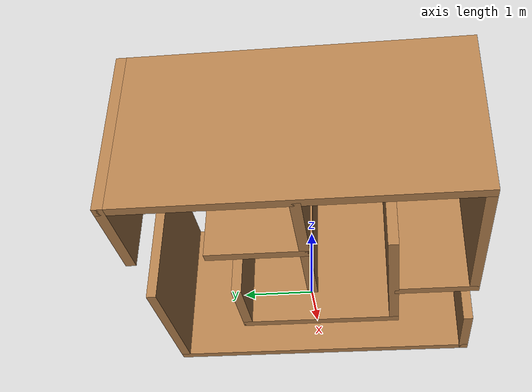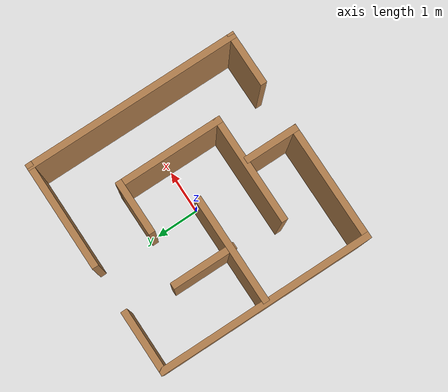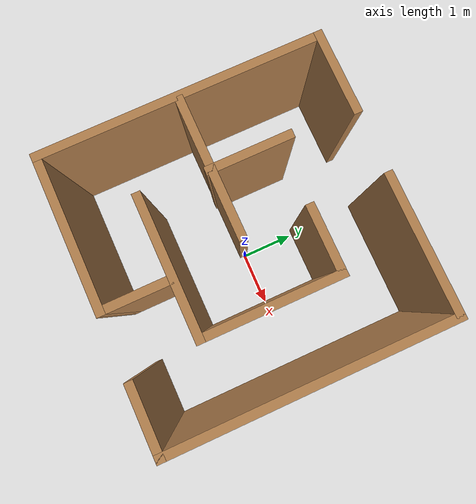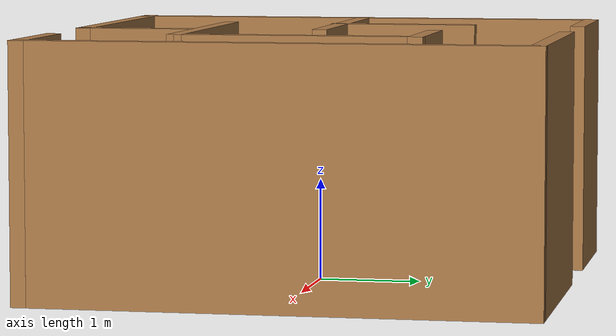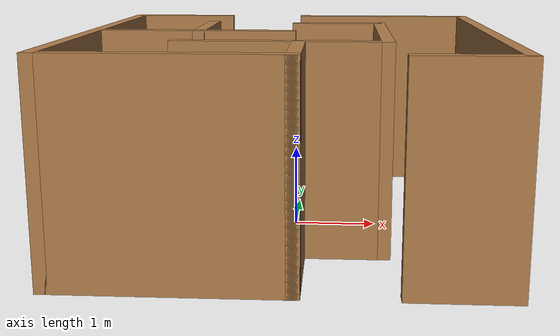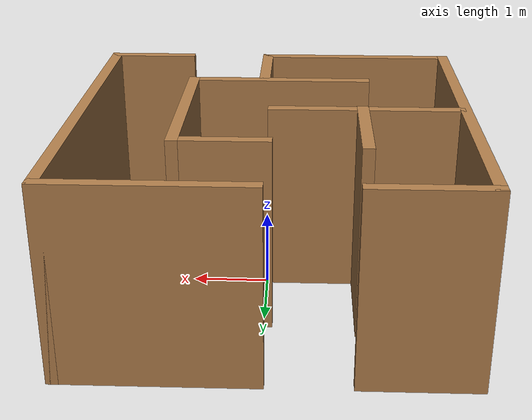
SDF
<?xml version='1.0'?>
<sdf version='1.6'>
  <model name='4by4'>
    <pose frame=''>-0.075513 0.018325 0 0 -0 0</pose>
    <link name='Wall_0'>
      <collision name='Wall_0_Collision'>
        <geometry>
          <box>
            <size>1.5 0.15 2.5</size>
          </box>
        </geometry>
        <pose frame=''>0 0 1.25 0 -0 0</pose>
      </collision>
      <visual name='Wall_0_Visual'>
        <pose frame=''>0 0 1.25 0 -0 0</pose>
        <geometry>
          <box>
            <size>1.5 0.15 2.5</size>
          </box>
        </geometry>
        <material>
          <script>
            <uri>file://media/materials/scripts/gazebo.material</uri>
            <name>Gazebo/Wood</name>
          </script>
          <ambient>1 1 1 1</ambient>
        </material>
      </visual>
      <pose frame=''>-1.76351 2.425 0 0 -0 3.14159</pose>
    </link>
    <link name='Wall_1'>
      <collision name='Wall_1_Collision'>
        <geometry>
          <box>
            <size>5 0.15 2.5</size>
          </box>
        </geometry>
        <pose frame=''>0 0 1.25 0 -0 0</pose>
      </collision>
      <visual name='Wall_1_Visual'>
        <pose frame=''>0 0 1.25 0 -0 0</pose>
        <geometry>
          <box>
            <size>5 0.15 2.5</size>
          </box>
        </geometry>
        <material>
          <script>
            <uri>file://media/materials/scripts/gazebo.material</uri>
            <name>Gazebo/Wood</name>
          </script>
          <ambient>1 1 1 1</ambient>
        </material>
      </visual>
      <pose frame=''>-2.43851 0 0 0 0 -1.5708</pose>
    </link>
    <link name='Wall_11'>
      <collision name='Wall_11_Collision'>
        <geometry>
          <box>
            <size>2.5 0.15 2.5</size>
          </box>
        </geometry>
        <pose frame=''>0 0 1.25 0 -0 0</pose>
      </collision>
      <visual name='Wall_11_Visual'>
        <pose frame=''>0 0 1.25 0 -0 0</pose>
        <geometry>
          <box>
            <size>2.5 0.15 2.5</size>
          </box>
        </geometry>
        <material>
          <script>
            <uri>file://media/materials/scripts/gazebo.material</uri>
            <name>Gazebo/Wood</name>
          </script>
          <ambient>1 1 1 1</ambient>
        </material>
      </visual>
      <pose frame=''>-0.032537 -1.23832 0 0 -0 0</pose>
    </link>
    <link name='Wall_12'>
      <collision name='Wall_12_Collision'>
        <geometry>
          <box>
            <size>2.5 0.15 2.5</size>
          </box>
        </geometry>
        <pose frame=''>0 0 1.25 0 -0 0</pose>
      </collision>
      <visual name='Wall_12_Visual'>
        <pose frame=''>0 0 1.25 0 -0 0</pose>
        <geometry>
          <box>
            <size>2.5 0.15 2.5</size>
          </box>
        </geometry>
        <material>
          <script>
            <uri>file://media/materials/scripts/gazebo.material</uri>
            <name>Gazebo/Wood</name>
          </script>
          <ambient>1 1 1 1</ambient>
        </material>
      </visual>
      <pose frame=''>1.14246 -0.063325 0 0 -0 1.5708</pose>
    </link>
    <link name='Wall_13'>
      <collision name='Wall_13_Collision'>
        <geometry>
          <box>
            <size>1.25 0.15 2.5</size>
          </box>
        </geometry>
        <pose frame=''>0 0 1.25 0 -0 0</pose>
      </collision>
      <visual name='Wall_13_Visual'>
        <pose frame=''>0 0 1.25 0 -0 0</pose>
        <geometry>
          <box>
            <size>1.25 0.15 2.5</size>
          </box>
        </geometry>
        <material>
          <script>
            <uri>file://media/materials/scripts/gazebo.material</uri>
            <name>Gazebo/Wood</name>
          </script>
          <ambient>1 1 1 1</ambient>
        </material>
      </visual>
      <pose frame=''>0.592463 1.11167 0 0 -0 3.14159</pose>
    </link>
    <link name='Wall_15'>
      <collision name='Wall_15_Collision'>
        <geometry>
          <box>
            <size>1.5 0.15 2.5</size>
          </box>
        </geometry>
        <pose frame=''>0 0 1.25 0 -0 0</pose>
      </collision>
      <visual name='Wall_15_Visual'>
        <pose frame=''>0 0 1.25 0 -0 0</pose>
        <geometry>
          <box>
            <size>1.5 0.15 2.5</size>
          </box>
        </geometry>
        <material>
          <script>
            <uri>file://media/materials/scripts/gazebo.material</uri>
            <name>Gazebo/Wood</name>
          </script>
          <ambient>1 1 1 1</ambient>
        </material>
      </visual>
      <pose frame=''>-1.14141 0.61265 0 0 0 -1.5708</pose>
    </link>
    <link name='Wall_2'>
      <collision name='Wall_2_Collision'>
        <geometry>
          <box>
            <size>2.75 0.15 2.5</size>
          </box>
        </geometry>
        <pose frame=''>0 0 1.25 0 -0 0</pose>
      </collision>
      <visual name='Wall_2_Visual'>
        <pose frame=''>0 0 1.25 0 -0 0</pose>
        <geometry>
          <box>
            <size>2.75 0.15 2.5</size>
          </box>
        </geometry>
        <material>
          <script>
            <uri>file://media/materials/scripts/gazebo.material</uri>
            <name>Gazebo/Wood</name>
          </script>
          <ambient>1 1 1 1</ambient>
        </material>
      </visual>
      <pose frame=''>-1.13851 -2.425 0 0 -0 0</pose>
    </link>
    <link name='Wall_3'>
      <collision name='Wall_3_Collision'>
        <geometry>
          <box>
            <size>1.25 0.15 2.5</size>
          </box>
        </geometry>
        <pose frame=''>0 0 1.25 0 -0 0</pose>
      </collision>
      <visual name='Wall_3_Visual'>
        <pose frame=''>0 0 1.25 0 -0 0</pose>
        <geometry>
          <box>
            <size>1.25 0.15 2.5</size>
          </box>
        </geometry>
        <material>
          <script>
            <uri>file://media/materials/scripts/gazebo.material</uri>
            <name>Gazebo/Wood</name>
          </script>
          <ambient>1 1 1 1</ambient>
        </material>
      </visual>
      <pose frame=''>0.161488 -1.875 0 0 -0 1.5708</pose>
    </link>
    <link name='Wall_5'>
      <collision name='Wall_5_Collision'>
        <geometry>
          <box>
            <size>2.5 0.15 2.5</size>
          </box>
        </geometry>
        <pose frame=''>0 0 1.25 0 -0 0</pose>
      </collision>
      <visual name='Wall_5_Visual'>
        <pose frame=''>0 0 1.25 0 -0 0</pose>
        <geometry>
          <box>
            <size>2.5 0.15 2.5</size>
          </box>
        </geometry>
        <material>
          <script>
            <uri>file://media/materials/scripts/gazebo.material</uri>
            <name>Gazebo/Wood</name>
          </script>
          <ambient>1 1 1 1</ambient>
        </material>
      </visual>
      <pose frame=''>1.26351 2.425 0 0 -0 0</pose>
    </link>
    <link name='Wall_6'>
      <collision name='Wall_6_Collision'>
        <geometry>
          <box>
            <size>5 0.15 2.5</size>
          </box>
        </geometry>
        <pose frame=''>0 0 1.25 0 -0 0</pose>
      </collision>
      <visual name='Wall_6_Visual'>
        <pose frame=''>0 0 1.25 0 -0 0</pose>
        <geometry>
          <box>
            <size>5 0.15 2.5</size>
          </box>
        </geometry>
        <material>
          <script>
            <uri>file://media/materials/scripts/gazebo.material</uri>
            <name>Gazebo/Wood</name>
          </script>
          <ambient>1 1 1 1</ambient>
        </material>
      </visual>
      <pose frame=''>2.43851 0 0 0 0 -1.5708</pose>
    </link>
    <link name='Wall_7'>
      <collision name='Wall_7_Collision'>
        <geometry>
          <box>
            <size>1.25 0.15 2.5</size>
          </box>
        </geometry>
        <pose frame=''>0 0 1.25 0 -0 0</pose>
      </collision>
      <visual name='Wall_7_Visual'>
        <pose frame=''>0 0 1.25 0 -0 0</pose>
        <geometry>
          <box>
            <size>1.25 0.15 2.5</size>
          </box>
        </geometry>
        <material>
          <script>
            <uri>file://media/materials/scripts/gazebo.material</uri>
            <name>Gazebo/Wood</name>
          </script>
          <ambient>1 1 1 1</ambient>
        </material>
      </visual>
      <pose frame=''>1.88851 -2.425 0 0 -0 3.14159</pose>
    </link>
    <link name='Wall_9'>
      <collision name='Wall_9_Collision'>
        <geometry>
          <box>
            <size>2.5 0.15 2.5</size>
          </box>
        </geometry>
        <pose frame=''>0 0 1.25 0 -0 0</pose>
      </collision>
      <visual name='Wall_9_Visual'>
        <pose frame=''>0 0 1.25 0 -0 0</pose>
        <geometry>
          <box>
            <size>2.5 0.15 2.5</size>
          </box>
        </geometry>
        <material>
          <script>
            <uri>file://media/materials/scripts/gazebo.material</uri>
            <name>Gazebo/Wood</name>
          </script>
          <ambient>1 1 1 1</ambient>
        </material>
      </visual>
      <pose frame=''>-1.18311 -0.03485 0 0 -0 0</pose>
    </link>
    <static>1</static>
  </model>
</sdf>
